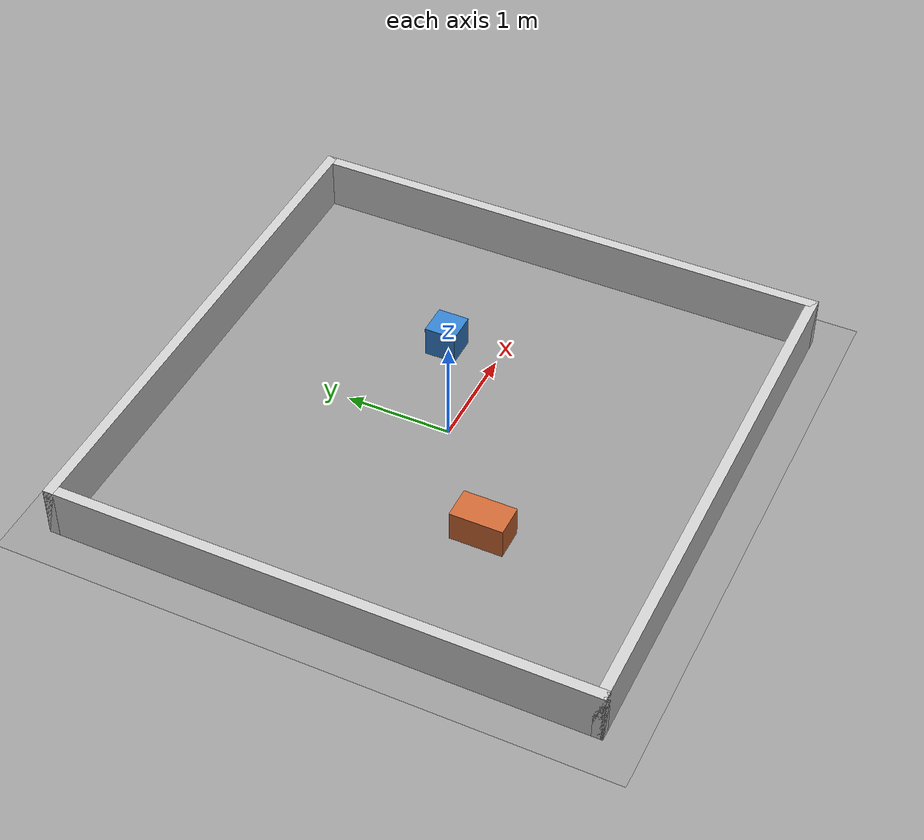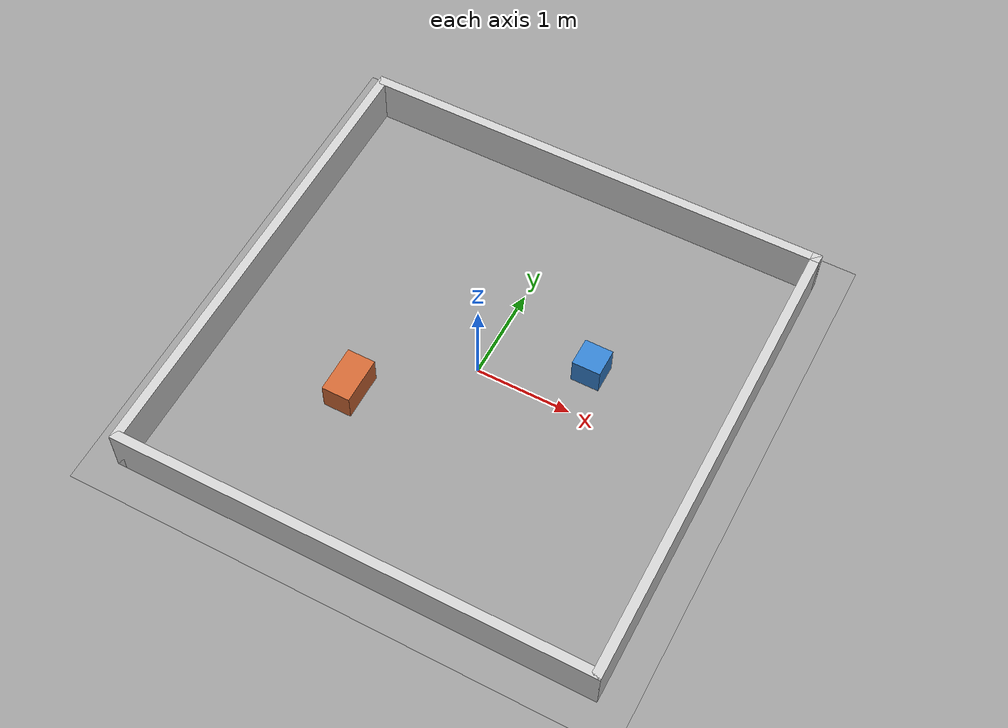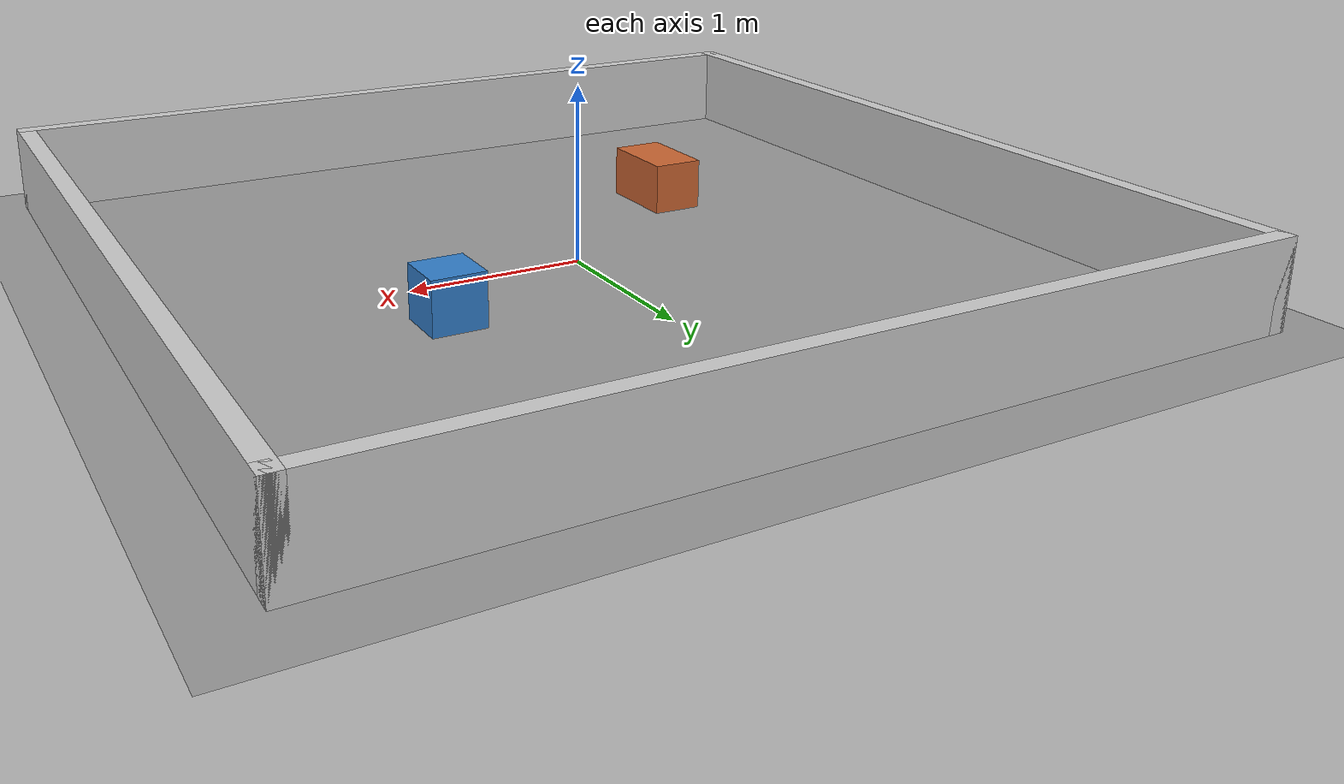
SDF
<?xml version="1.0" ?>
<sdf version="1.9">
  <world name="room">

    <!-- Required system plugins -->
    <plugin filename="gz-sim-physics-system"
            name="gz::sim::systems::Physics"/>
    <plugin filename="gz-sim-user-commands-system"
            name="gz::sim::systems::UserCommands"/>
    <plugin filename="gz-sim-scene-broadcaster-system"
            name="gz::sim::systems::SceneBroadcaster"/>
    <plugin filename="gz-sim-sensors-system"
            name="gz::sim::systems::Sensors">
      <render_engine>ogre2</render_engine>
    </plugin>
    <plugin filename="gz-sim-imu-system"
            name="gz::sim::systems::Imu"/>
    <plugin filename="gz-sim-magnetometer-system"
            name="gz::sim::systems::Magnetometer"/>

    <gravity>0 0 -9.81</gravity>
    <magnetic_field>6e-06 2.3e-05 -4.2e-05</magnetic_field>
    <atmosphere type="adiabatic"/>

    <scene>
      <ambient>0.4 0.4 0.4 1</ambient>
      <background>0.7 0.7 0.7 1</background>
      <shadows>true</shadows>
    </scene>

    <light type="directional" name="sun">
      <cast_shadows>true</cast_shadows>
      <pose>0 0 10 0 0 0</pose>
      <diffuse>0.8 0.8 0.8 1</diffuse>
      <specular>0.2 0.2 0.2 1</specular>
      <direction>-0.5 0.1 -0.9</direction>
    </light>

    <!-- Floor 10×10 m -->
    <model name="floor">
      <static>true</static>
      <link name="link">
        <collision name="col">
          <geometry><plane><normal>0 0 1</normal><size>10 10</size></plane></geometry>
          <surface><friction><ode><mu>1.0</mu><mu2>1.0</mu2></ode></friction></surface>
        </collision>
        <visual name="vis">
          <geometry><plane><normal>0 0 1</normal><size>10 10</size></plane></geometry>
          <material>
            <ambient>0.6 0.6 0.6 1</ambient>
            <diffuse>0.6 0.6 0.6 1</diffuse>
          </material>
        </visual>
      </link>
    </model>

    <!-- Walls: 5×5 m room centred at origin, 0.1 m thick, 0.5 m tall -->

    <!-- North wall (y = +2.5) -->
    <model name="wall_north">
      <static>true</static>
      <pose>0 2.5 0.25 0 0 0</pose>
      <link name="link">
        <collision name="col"><geometry><box><size>5.1 0.1 0.5</size></box></geometry></collision>
        <visual name="vis">
          <geometry><box><size>5.1 0.1 0.5</size></box></geometry>
          <material><ambient>0.8 0.8 0.8 1</ambient><diffuse>0.8 0.8 0.8 1</diffuse></material>
        </visual>
      </link>
    </model>

    <!-- South wall (y = -2.5) -->
    <model name="wall_south">
      <static>true</static>
      <pose>0 -2.5 0.25 0 0 0</pose>
      <link name="link">
        <collision name="col"><geometry><box><size>5.1 0.1 0.5</size></box></geometry></collision>
        <visual name="vis">
          <geometry><box><size>5.1 0.1 0.5</size></box></geometry>
          <material><ambient>0.8 0.8 0.8 1</ambient><diffuse>0.8 0.8 0.8 1</diffuse></material>
        </visual>
      </link>
    </model>

    <!-- East wall (x = +2.5) -->
    <model name="wall_east">
      <static>true</static>
      <pose>2.5 0 0.25 0 0 0</pose>
      <link name="link">
        <collision name="col"><geometry><box><size>0.1 5.1 0.5</size></box></geometry></collision>
        <visual name="vis">
          <geometry><box><size>0.1 5.1 0.5</size></box></geometry>
          <material><ambient>0.8 0.8 0.8 1</ambient><diffuse>0.8 0.8 0.8 1</diffuse></material>
        </visual>
      </link>
    </model>

    <!-- West wall (x = -2.5) -->
    <model name="wall_west">
      <static>true</static>
      <pose>-2.5 0 0.25 0 0 0</pose>
      <link name="link">
        <collision name="col"><geometry><box><size>0.1 5.1 0.5</size></box></geometry></collision>
        <visual name="vis">
          <geometry><box><size>0.1 5.1 0.5</size></box></geometry>
          <material><ambient>0.8 0.8 0.8 1</ambient><diffuse>0.8 0.8 0.8 1</diffuse></material>
        </visual>
      </link>
    </model>

    <!-- Obstacle boxes for SLAM/nav testing -->
    <model name="box1">
      <static>true</static>
      <pose>1.0 0.5 0.15 0 0 0</pose>
      <link name="link">
        <collision name="col"><geometry><box><size>0.3 0.3 0.3</size></box></geometry></collision>
        <visual name="vis">
          <geometry><box><size>0.3 0.3 0.3</size></box></geometry>
          <material><ambient>0.2 0.5 0.8 1</ambient><diffuse>0.2 0.5 0.8 1</diffuse></material>
        </visual>
      </link>
    </model>

    <model name="box2">
      <static>true</static>
      <pose>-1.0 -0.8 0.15 0 0 0</pose>
      <link name="link">
        <collision name="col"><geometry><box><size>0.3 0.5 0.3</size></box></geometry></collision>
        <visual name="vis">
          <geometry><box><size>0.3 0.5 0.3</size></box></geometry>
          <material><ambient>0.8 0.4 0.2 1</ambient><diffuse>0.8 0.4 0.2 1</diffuse></material>
        </visual>
      </link>
    </model>

  </world>
</sdf>
